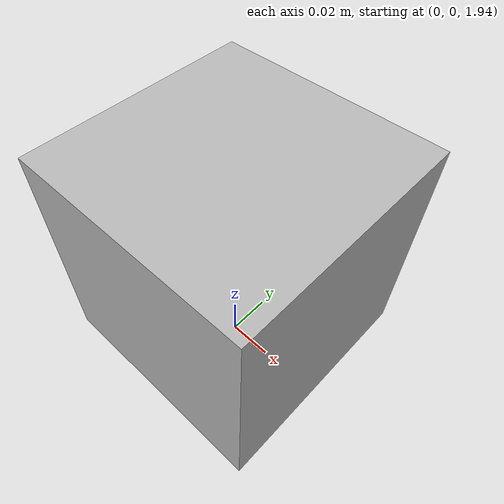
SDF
<?xml version="1.0"?>
<sdf version="1.5">
  <world name="default">
    <!-- global light source -->
    <include>
      <uri>model://sun</uri>
    </include>

    <!-- ground plane -->
    <model name="ground">
      <include>
        <uri>model://ground_plane</uri>
      </include>
    </model>

    <!-- camera -->
    <model name="camera">
      <pose>0 0 2.0 0 1.5708 0</pose>
      <link name="link">
        <gravity>0</gravity>
        <inertial>
          <mass>0.1</mass>
        </inertial>
        <collision name="collision">
          <geometry>
            <box>
              <size>0.1 0.1 0.1</size>
            </box>
          </geometry>
        </collision>
        <visual name="visual">
          <geometry>
            <box>
              <size>0.1 0.1 0.1</size>
            </box>
          </geometry>
        </visual>
        <sensor name="camera" type="camera">
          <camera>
            <horizontal_fov>1.047</horizontal_fov>
            <image>
              <width>640</width>
              <height>640</height>
            </image>
            <clip>
              <near>0.1</near>
              <far>1000</far>
            </clip>
            <lens>
              <cutoff_angle>1.5707</cutoff_angle>
            </lens>
          </camera>
          <always_on>1</always_on>
          <update_rate>30</update_rate>
          <visualize>true</visualize>
          <plugin name="camera_plugin" filename="libcamera_gplugin.so" />
        </sensor>
      </link>
    </model>

    <!-- landing zone -->
    <model name="landing">
      <include>
        <uri>model://landing</uri>
      </include>
    </model>

    <plugin name="world_gplugin" filename="libworld_gplugin.so"></plugin>
  </world>
</sdf>

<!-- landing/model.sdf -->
<sdf version="1.5">
  <model name="landing">
    <allow_auto_disable>true</allow_auto_disable>
    <link name="link">
      <pose>0.0 0.0 0.0 0.0 0.0 0.0</pose>
      <inertial>
        <mass>1000.0</mass>
        <inertia>
          <ixx>1.0</ixx>
          <iyy>1.0</iyy>
          <izz>1.0</izz>
        </inertia>
      </inertial>

      <collision name="collision">
        <geometry>
          <box>
            <size>1 1 0.1</size>
          </box>
        </geometry>
        <surface>
          <friction>
            <ode>
              <mu>100.0</mu>
              <mu2>50.0</mu2>
              <slip1>0.0</slip1>
              <slip2>0.0</slip2>
            </ode>
          </friction>
        </surface>
      </collision>

      <visual name="visual">
        <cast_shadows>true</cast_shadows>
        <geometry>
          <box>
            <size>1 1 0.1</size>
          </box>
        </geometry>
        <material>
          <script>
            <uri>model://landing/materials/scripts</uri>
            <uri>model://landing/materials/textures</uri>
            <name>Landing/Image</name>
          </script>
        </material>
      </visual>
    </link>
    <plugin name="lz_plugin" filename="liblz_gplugin.so"/>
  </model>
</sdf>
